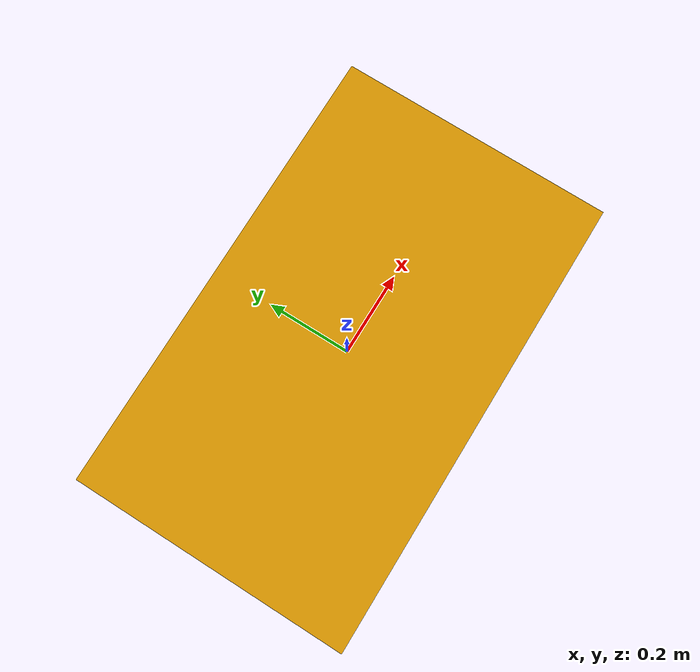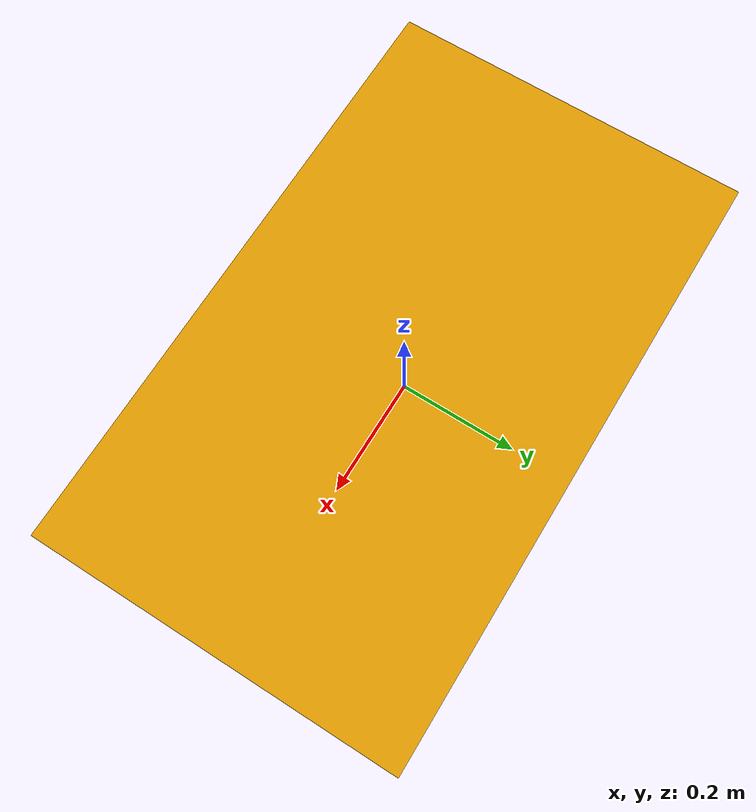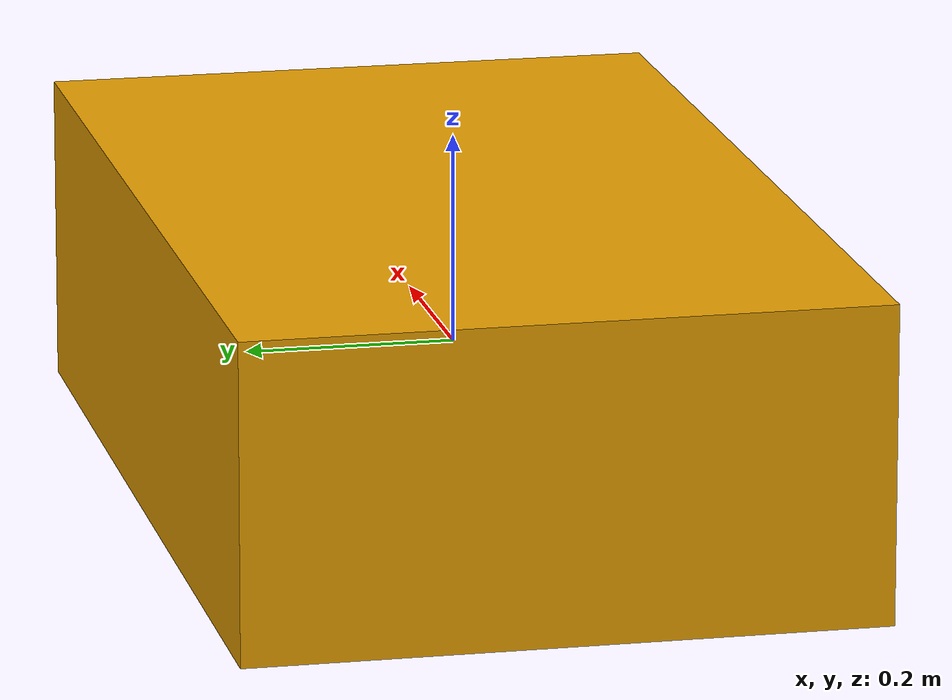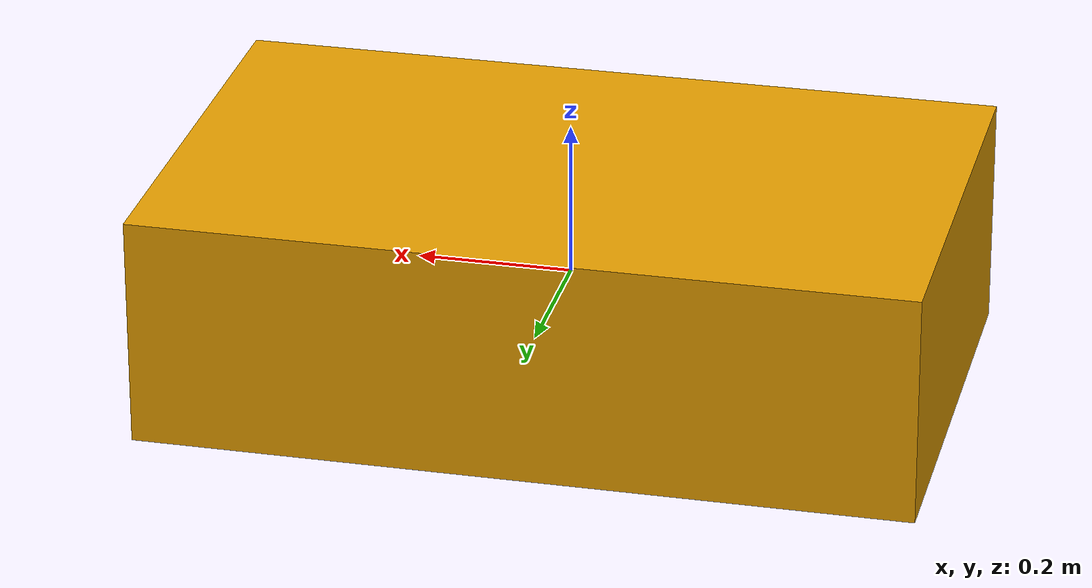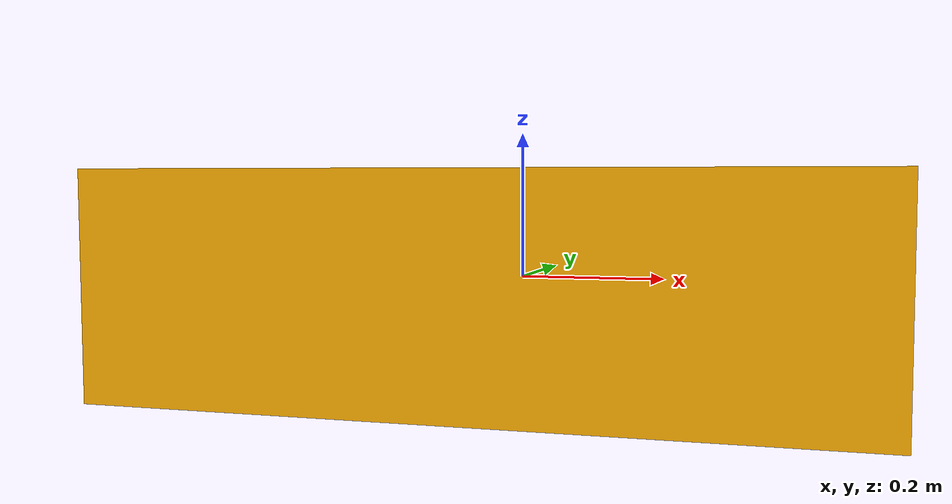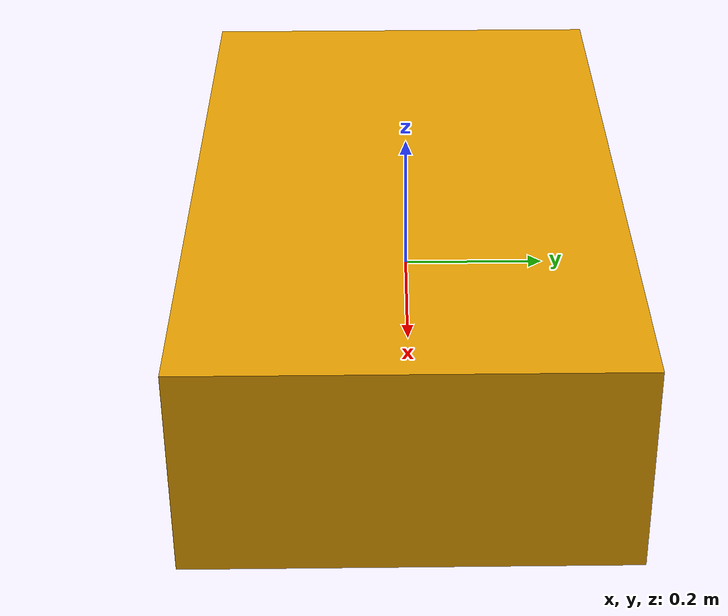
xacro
<?xml version = "1.0"?>
<robot name = "pick_place_robot" xmlns:xacro = "https://www.ros.org/wiki/xacro">
    <link name = "base_link">
        <visual>
            <geometry>
                <box size = "1.0 0.6 0.3"/>
            </geometry>
            <origin xyz = "0 0 0" rpy = "0 0 0"/>
        </visual>
        <collision>
            <geometry>
                <box size = "1.0 0.6 0.3"/>
            </geometry>
            <origin xyz = "0 0 0" rpy = "0 0 0"/>
        </collision>
    </link>

    <link name = "base_footprint_link">
    </link>

    <link name = "back_right_wheel_link">
        <visual>
            <geometry>
                <cylinder radius = "0.15" length = "0.05"/>
            </geometry>
            <origin xyz = "0 0 0" rpy = "0 0 0"/>
        </visual>
    </link>

    <joint name = "base_footprint_joint" type = "fixed">
        <parent link = "base_footprint_link"/>
        <child link = "base_link"/>
        <origin xyz = "0 0 0" rpy = "0 0 0"/>
    </joint>

    <joint name = "base_back_right_wheel_joint" type = "fixed">
        <parent link = "base_link"/>
        <child link = "back_right_wheel_link"/>
        <origin xyz = "0 0 0" rpy = "0 0 0"/>
    </joint>
</robot>
